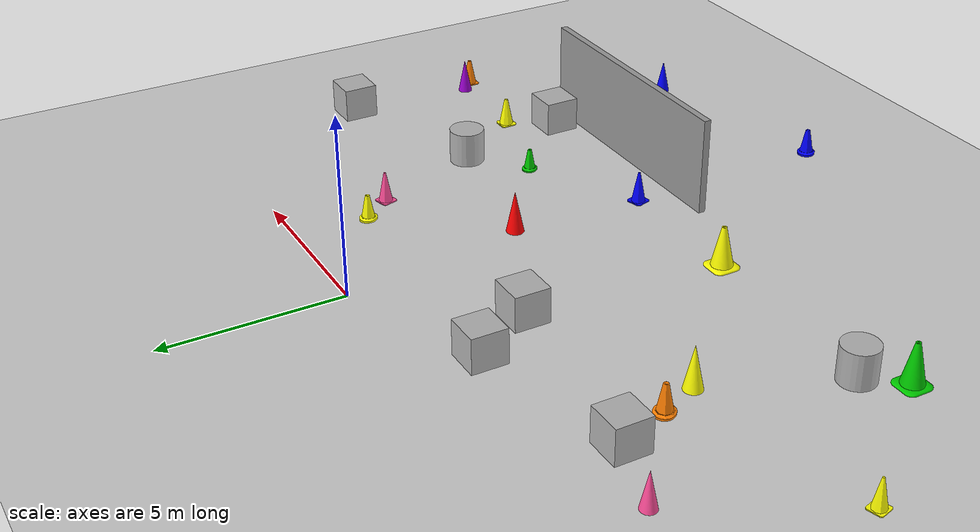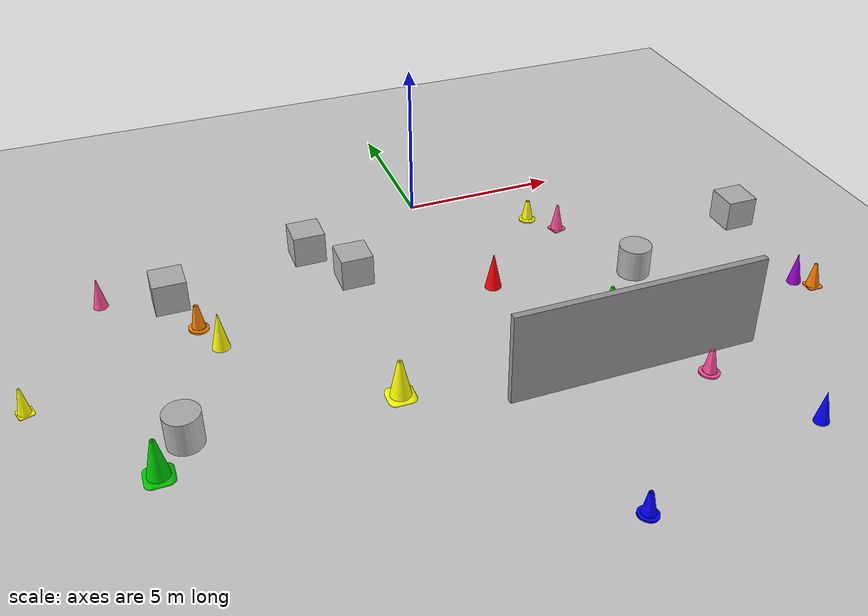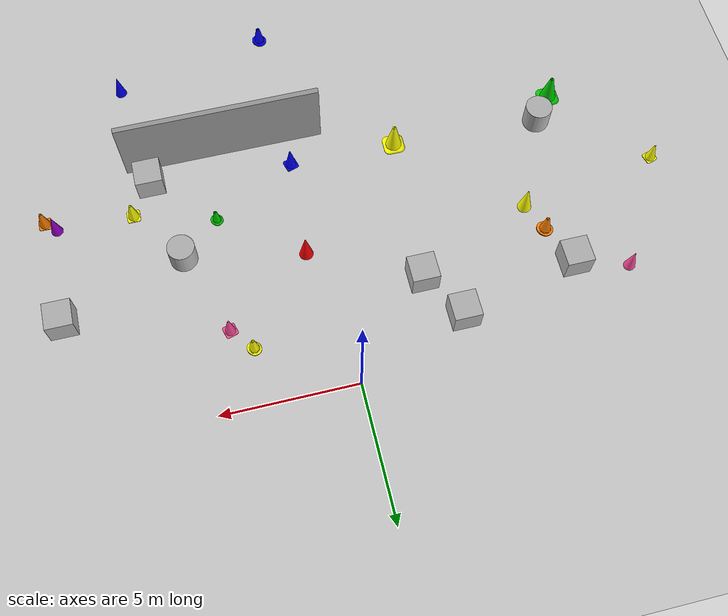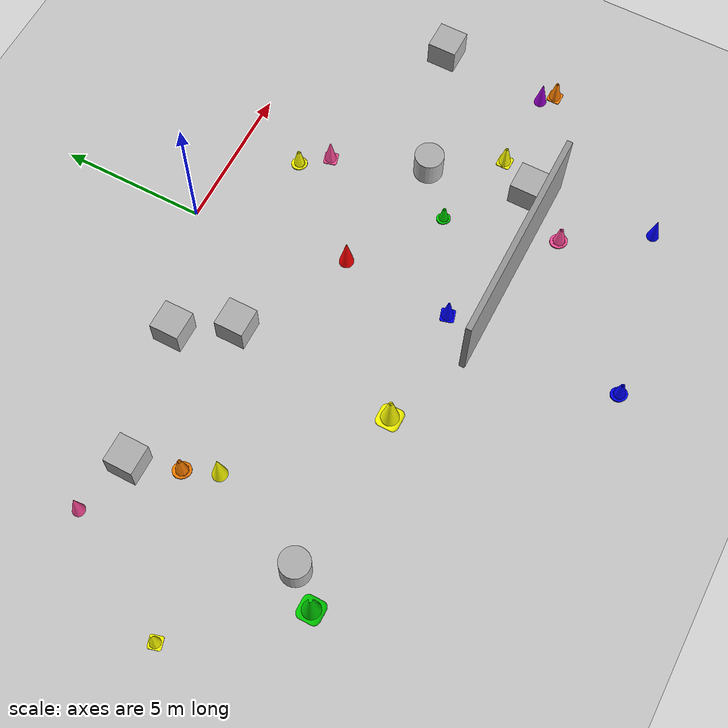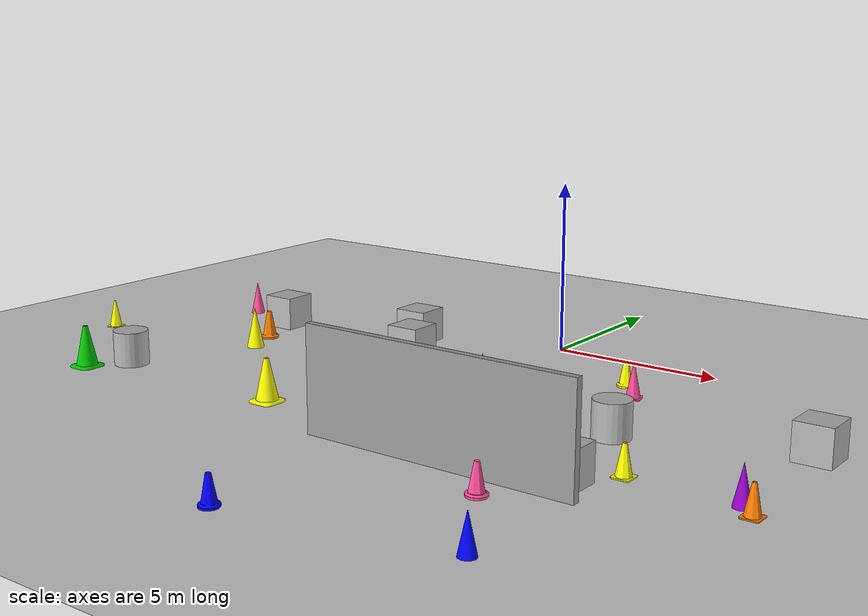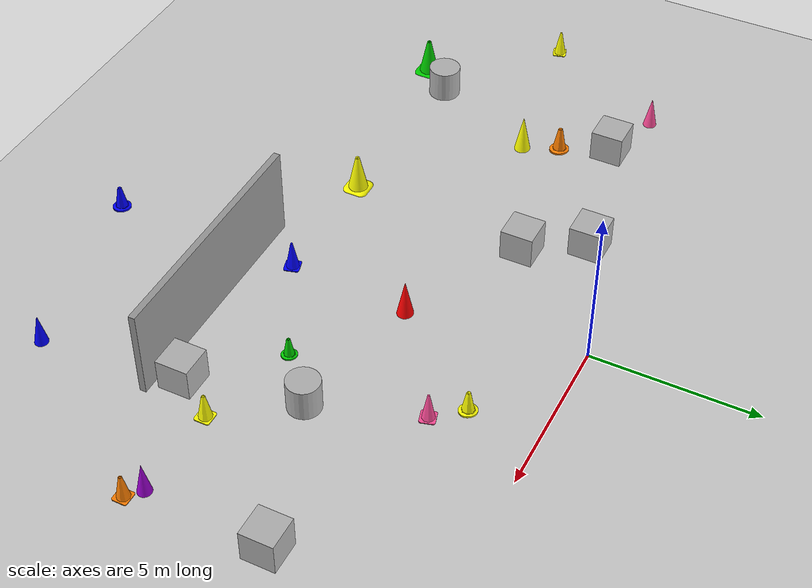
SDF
<sdf version="1.9">
 <world name="empty">
  <model name="ground_plane">
   <static>true</static>
   <link name="link">
    <collision name="collision">
     <geometry><plane><normal>0 0 1</normal><size>100 100</size></plane></geometry>
    </collision>
    <visual name="visual">
     <geometry><plane><normal>0 0 1</normal><size>100 100</size></plane></geometry>
     <material>
      <ambient>0.8 0.8 0.8 1</ambient>
      <diffuse>0.8 0.8 0.8 1</diffuse>
      <specular>0.8 0.8 0.8 1</specular>
     </material>
    </visual>
    <inertial>
     <mass>1</mass>
     <inertia><ixx>1</ixx><ixy>0</ixy><ixz>0</ixz><iyy>1</iyy><iyz>0</iyz><izz>1</izz></inertia>
    </inertial>
   </link>
  </model>
  <model name="grey_wall">
   <static>true</static>
   <link name="link">
    <pose>0 0 1.4 0 -0 0</pose>
    <collision name="collision"><geometry><box><size>7.5 0.2 2.8</size></box></geometry></collision>
    <visual name="visual">
     <cast_shadows>false</cast_shadows>
     <geometry><box><size>7.5 0.2 2.8</size></box></geometry>
     <material>
      <script>
       <uri>https://fuel.gazebosim.org/1.0/openrobotics/models/grey wall/3/files/materials/scripts</uri>
       <uri>https://fuel.gazebosim.org/1.0/openrobotics/models/grey wall/3/files/materials/textures</uri>
       <name>vrc/grey_wall</name>
      </script>
     </material>
    </visual>
    <inertial>
     <mass>1</mass>
     <inertia><ixx>1</ixx><ixy>0</ixy><ixz>0</ixz><iyy>1</iyy><iyz>0</iyz><izz>1</izz></inertia>
    </inertial>
   </link>
   <pose>2.89274 -10.265 0 0 -0 0</pose>
  </model>
  <model name="box_2">
   <pose>9.7016 -4.55837 0.5 0 -0 0</pose>
   <link name="box_link">
    <inertial>
     <inertia><ixx>0.16666</ixx><ixy>0</ixy><ixz>0</ixz><iyy>0.16666</iyy><iyz>0</iyz><izz>0.16666</izz></inertia>
     <mass>1</mass>
    </inertial>
    <collision name="box_collision"><geometry><box><size>1 1 1</size></box></geometry></collision>
    <visual name="box_visual">
     <geometry><box><size>1 1 1</size></box></geometry>
     <material>
      <ambient>0.3 0.3 0.3 1</ambient>
      <diffuse>0.7 0.7 0.7 1</diffuse>
      <specular>1 1 1 1</specular>
     </material>
    </visual>
   </link>
   <static>false</static>
  </model>
  <model name="box_3">
   <pose>5.83862 -9.47108 0.5 0 -0 0</pose>
   <link name="box_link">
    <inertial>
     <inertia><ixx>0.16666</ixx><ixy>0</ixy><ixz>0</ixz><iyy>0.16666</iyy><iyz>0</iyz><izz>0.16666</izz></inertia>
     <mass>1</mass>
    </inertial>
    <collision name="box_collision"><geometry><box><size>1 1 1</size></box></geometry></collision>
    <visual name="box_visual">
     <geometry><box><size>1 1 1</size></box></geometry>
     <material>
      <ambient>0.3 0.3 0.3 1</ambient>
      <diffuse>0.7 0.7 0.7 1</diffuse>
      <specular>1 1 1 1</specular>
     </material>
    </visual>
   </link>
   <static>false</static>
  </model>
  <model name="box_5">
   <pose>-3.05825 -3.35371 0.5 0 -0 0</pose>
   <link name="box_link">
    <inertial>
     <inertia><ixx>0.16666</ixx><ixy>0</ixy><ixz>0</ixz><iyy>0.16666</iyy><iyz>0</iyz><izz>0.16666</izz></inertia>
     <mass>1</mass>
    </inertial>
    <collision name="box_collision"><geometry><box><size>1 1 1</size></box></geometry></collision>
    <visual name="box_visual">
     <geometry><box><size>1 1 1</size></box></geometry>
     <material>
      <ambient>0.3 0.3 0.3 1</ambient>
      <diffuse>0.7 0.7 0.7 1</diffuse>
      <specular>1 1 1 1</specular>
     </material>
    </visual>
   </link>
   <static>false</static>
  </model>
  <model name="box_6">
   <pose>-4.09117 -1.61728 0.5 0 -0 0</pose>
   <link name="box_link">
    <inertial>
     <inertia><ixx>0.16666</ixx><ixy>0</ixy><ixz>0</ixz><iyy>0.16666</iyy><iyz>0</iyz><izz>0.16666</izz></inertia>
     <mass>1</mass>
    </inertial>
    <collision name="box_collision"><geometry><box><size>1 1 1</size></box></geometry></collision>
    <visual name="box_visual">
     <geometry><box><size>1 1 1</size></box></geometry>
     <material>
      <ambient>0.3 0.3 0.3 1</ambient>
      <diffuse>0.7 0.7 0.7 1</diffuse>
      <specular>1 1 1 1</specular>
     </material>
    </visual>
   </link>
   <static>false</static>
  </model>
  <model name="box_7">
   <pose>-8.54137 -2.70119 0.5 0 -0 0</pose>
   <link name="box_link">
    <inertial>
     <inertia><ixx>0.16666</ixx><ixy>0</ixy><ixz>0</ixz><iyy>0.16666</iyy><iyz>0</iyz><izz>0.16666</izz></inertia>
     <mass>1</mass>
    </inertial>
    <collision name="box_collision"><geometry><box><size>1 1 1</size></box></geometry></collision>
    <visual name="box_visual">
     <geometry><box><size>1 1 1</size></box></geometry>
     <material>
      <ambient>0.3 0.3 0.3 1</ambient>
      <diffuse>0.7 0.7 0.7 1</diffuse>
      <specular>1 1 1 1</specular>
     </material>
    </visual>
   </link>
   <static>false</static>
  </model>
  <model name="cylinder">
   <pose>5.13926 -6.10192 0.5 0 -0 0</pose>
   <link name="cylinder_link">
    <inertial>
     <inertia>
      <ixx>0.14580000000000001</ixx>
      <ixy>0</ixy>
      <ixz>0</ixz>
      <iyy>0.14580000000000001</iyy>
      <iyz>0</iyz>
      <izz>0.125</izz>
     </inertia>
     <mass>1</mass>
    </inertial>
    <collision name="cylinder_collision">
     <geometry><cylinder><radius>0.5</radius><length>1</length></cylinder></geometry>
    </collision>
    <visual name="cylinder_visual">
     <geometry><cylinder><radius>0.5</radius><length>1</length></cylinder></geometry>
     <material>
      <ambient>0.3 0.3 0.3 1</ambient>
      <diffuse>0.7 0.7 0.7 1</diffuse>
      <specular>1 1 1 1</specular>
     </material>
    </visual>
   </link>
   <static>false</static>
  </model>
  <model name="cylinder_2">
   <pose>-9.07969 -8.79365 0.5 0 -0 0</pose>
   <link name="cylinder_link">
    <inertial>
     <inertia>
      <ixx>0.14580000000000001</ixx>
      <ixy>0</ixy>
      <ixz>0</ixz>
      <iyy>0.14580000000000001</iyy>
      <iyz>0</iyz>
      <izz>0.125</izz>
     </inertia>
     <mass>1</mass>
    </inertial>
    <collision name="cylinder_collision">
     <geometry><cylinder><radius>0.5</radius><length>1</length></cylinder></geometry>
    </collision>
    <visual name="cylinder_visual">
     <geometry><cylinder><radius>0.5</radius><length>1</length></cylinder></geometry>
     <material>
      <ambient>0.3 0.3 0.3 1</ambient>
      <diffuse>0.7 0.7 0.7 1</diffuse>
      <specular>1 1 1 1</specular>
     </material>
    </visual>
   </link>
   <static>false</static>
  </model>
  <model name="safety_cone">
   <static>true</static>
   <link name="link">
    <visual name="visual">
     <geometry>
      <mesh>
       <uri>file:///home/abhay-07/.gz/models/cone_5/model://cone_5/meshes/safety_cone.stl</uri>
       <scale>0.3068 0.3068 0.3068</scale>
      </mesh>
     </geometry>
     <material><ambient>0.8 0.2 0.5 1</ambient><diffuse>1.0 0.3 0.6 1</diffuse></material>
    </visual>
    <collision name="collision">
     <geometry><cylinder><radius>0.0767</radius><length>0.3068</length></cylinder></geometry>
    </collision>
    <inertial>
     <mass>1</mass>
     <inertia><ixx>1</ixx><ixy>0</ixy><ixz>0</ixz><iyy>1</iyy><iyz>0</iyz><izz>1</izz></inertia>
    </inertial>
   </link>
   <pose>-2.72411 -1.42066 0 0 -0 0</pose>
  </model>
  <model name="another_cone_0">
   <static>true</static>
   <link name="link">
    <visual name="visual">
     <geometry>
      <mesh>
       <uri>file:///home/abhay-07/.gz/models/cone_3/model://cone_3/meshes/another_cone.stl</uri>
       <scale>0.3079 0.3079 0.3079</scale>
      </mesh>
     </geometry>
     <material><ambient>0.8 0.4 0.0 1</ambient><diffuse>1.0 0.5 0.0 1</diffuse></material>
    </visual>
    <collision name="collision">
     <geometry><cylinder><radius>0.0770</radius><length>0.3079</length></cylinder></geometry>
    </collision>
    <inertial>
     <mass>1</mass>
     <inertia><ixx>1</ixx><ixy>0</ixy><ixz>0</ixz><iyy>1</iyy><iyz>0</iyz><izz>1</izz></inertia>
    </inertial>
   </link>
   <pose>6.51559 -6.84749 0 0 -0 0</pose>
  </model>
  <model name="cone_red_1">
   <static>true</static>
   <link name="link">
    <visual name="visual">
     <geometry>
      <mesh>
       <uri>file:///home/abhay-07/.gz/models/cone_red/model://cone_red/meshes/cone.stl</uri>
       <scale>0.0151 0.0151 0.0151</scale>
      </mesh>
     </geometry>
     <material><ambient>0.0 0.0 0.8 1</ambient><diffuse>0.0 0.0 1.0 1</diffuse></material>
    </visual>
    <collision name="collision">
     <geometry><cylinder><radius>0.0500</radius><length>0.1000</length></cylinder></geometry>
    </collision>
    <inertial>
     <mass>1</mass>
     <inertia><ixx>1</ixx><ixy>0</ixy><ixz>0</ixz><iyy>1</iyy><iyz>0</iyz><izz>1</izz></inertia>
    </inertial>
   </link>
   <pose>6.3132 -13.7885 0 0 -0 0</pose>
  </model>
  <model name="cone_3_0">
   <static>true</static>
   <link name="link">
    <visual name="visual">
     <geometry>
      <mesh>
       <uri>file:///home/abhay-07/.gz/models/cone_2/model://cone_2/meshes/cone_3.stl</uri>
       <scale>0.3659 0.3659 0.3659</scale>
      </mesh>
     </geometry>
     <material><ambient>0.8 0.2 0.5 1</ambient><diffuse>1.0 0.3 0.6 1</diffuse></material>
    </visual>
    <collision name="collision">
     <geometry><cylinder><radius>0.0915</radius><length>0.3659</length></cylinder></geometry>
    </collision>
    <inertial>
     <mass>1</mass>
     <inertia><ixx>1</ixx><ixy>0</ixy><ixz>0</ixz><iyy>1</iyy><iyz>0</iyz><izz>1</izz></inertia>
    </inertial>
   </link>
   <pose>2.05775 -13.9966 0 0 -0 0</pose>
  </model>
  <model name="cone_3_1">
   <static>true</static>
   <link name="link">
    <visual name="visual">
     <geometry>
      <mesh>
       <uri>file:///home/abhay-07/.gz/models/cone_2/model://cone_2/meshes/cone_3.stl</uri>
       <scale>0.3454 0.3454 0.3454</scale>
      </mesh>
     </geometry>
     <material><ambient>0.0 0.0 0.8 1</ambient><diffuse>0.0 0.0 1.0 1</diffuse></material>
    </visual>
    <collision name="collision">
     <geometry><cylinder><radius>0.0863</radius><length>0.3454</length></cylinder></geometry>
    </collision>
    <inertial>
     <mass>1</mass>
     <inertia><ixx>1</ixx><ixy>0</ixy><ixz>0</ixz><iyy>1</iyy><iyz>0</iyz><izz>1</izz></inertia>
    </inertial>
   </link>
   <pose>-1.90886 -17.7406 0 0 -0 0</pose>
  </model>
  <model name="cone_3_2">
   <static>true</static>
   <link name="link">
    <visual name="visual">
     <geometry>
      <mesh>
       <uri>file:///home/abhay-07/.gz/models/cone_2/model://cone_2/meshes/cone_3.stl</uri>
       <scale>0.3339 0.3339 0.3339</scale>
      </mesh>
     </geometry>
     <material><ambient>0.8 0.8 0.0 1</ambient><diffuse>1.0 1.0 0.0 1</diffuse></material>
    </visual>
    <collision name="collision">
     <geometry><cylinder><radius>0.0835</radius><length>0.3339</length></cylinder></geometry>
    </collision>
    <inertial>
     <mass>1</mass>
     <inertia><ixx>1</ixx><ixy>0</ixy><ixz>0</ixz><iyy>1</iyy><iyz>0</iyz><izz>1</izz></inertia>
    </inertial>
   </link>
   <pose>0.921934 -4.7045 0 0 -0 0</pose>
  </model>
  <model name="cone_red_2">
   <static>true</static>
   <link name="link">
    <visual name="visual">
     <geometry>
      <mesh>
       <uri>file:///home/abhay-07/.gz/models/cone_red/model://cone_red/meshes/cone.stl</uri>
       <scale>0.0182 0.0182 0.0182</scale>
      </mesh>
     </geometry>
     <material><ambient>0.8 0.0 0.0 1</ambient><diffuse>1.0 0.0 0.0 1</diffuse></material>
    </visual>
    <collision name="collision">
     <geometry><cylinder><radius>0.0500</radius><length>0.1000</length></cylinder></geometry>
    </collision>
    <inertial>
     <mass>1</mass>
     <inertia><ixx>1</ixx><ixy>0</ixy><ixz>0</ixz><iyy>1</iyy><iyz>0</iyz><izz>1</izz></inertia>
    </inertial>
   </link>
   <pose>0.723312 -5.23185 0 0 -0 0</pose>
  </model>
  <model name="safety_cone_0">
   <static>true</static>
   <link name="link">
    <visual name="visual">
     <geometry>
      <mesh>
       <uri>file:///home/abhay-07/.gz/models/cone_5/model://cone_5/meshes/safety_cone.stl</uri>
       <scale>0.3133 0.3133 0.3133</scale>
      </mesh>
     </geometry>
     <material><ambient>0.0 0.0 0.8 1</ambient><diffuse>0.0 0.0 1.0 1</diffuse></material>
    </visual>
    <collision name="collision">
     <geometry><cylinder><radius>0.0783</radius><length>0.3133</length></cylinder></geometry>
    </collision>
    <inertial>
     <mass>1</mass>
     <inertia><ixx>1</ixx><ixy>0</ixy><ixz>0</ixz><iyy>1</iyy><iyz>0</iyz><izz>1</izz></inertia>
    </inertial>
   </link>
   <pose>-6.34687 -7.52608 0 0 -0 0</pose>
  </model>
  <model name="football_cone_1">
   <static>true</static>
   <link name="link">
    <visual name="visual">
     <geometry>
      <mesh>
       <uri>file:///home/abhay-07/.gz/models/cone_4/model://cone_4/meshes/football_cone.stl</uri>
       <scale>0.3949 0.3949 0.3949</scale>
      </mesh>
     </geometry>
     <material><ambient>0.8 0.8 0.0 1</ambient><diffuse>1.0 1.0 0.0 1</diffuse></material>
    </visual>
    <collision name="collision">
     <geometry><cylinder><radius>0.0987</radius><length>0.3949</length></cylinder></geometry>
    </collision>
    <inertial>
     <mass>1</mass>
     <inertia><ixx>1</ixx><ixy>0</ixy><ixz>0</ixz><iyy>1</iyy><iyz>0</iyz><izz>1</izz></inertia>
    </inertial>
   </link>
   <pose>-4.25359 -10.2323 0 0 -0 0</pose>
  </model>
  <model name="cone_3_3">
   <static>true</static>
   <link name="link">
    <visual name="visual">
     <geometry>
      <mesh>
       <uri>file:///home/abhay-07/.gz/models/cone_2/model://cone_2/meshes/cone_3.stl</uri>
       <scale>0.2923 0.2923 0.2923</scale>
      </mesh>
     </geometry>
     <material><ambient>0.0 0.6 0.0 1</ambient><diffuse>0.0 0.8 0.0 1</diffuse></material>
    </visual>
    <collision name="collision">
     <geometry><cylinder><radius>0.0731</radius><length>0.2923</length></cylinder></geometry>
    </collision>
    <inertial>
     <mass>1</mass>
     <inertia><ixx>1</ixx><ixy>0</ixy><ixz>0</ixz><iyy>1</iyy><iyz>0</iyz><izz>1</izz></inertia>
    </inertial>
   </link>
   <pose>1.58672 -9.67033 0 0 -0 0</pose>
  </model>
  <model name="cone_red_3">
   <static>true</static>
   <link name="link">
    <visual name="visual">
     <geometry>
      <mesh>
       <uri>file:///home/abhay-07/.gz/models/cone_red/model://cone_red/meshes/cone.stl</uri>
       <scale>0.0154 0.0154 0.0154</scale>
      </mesh>
     </geometry>
     <material><ambient>0.4 0.0 0.6 1</ambient><diffuse>0.6 0.0 0.8 1</diffuse></material>
    </visual>
    <collision name="collision">
     <geometry><cylinder><radius>0.0500</radius><length>0.1000</length></cylinder></geometry>
    </collision>
    <inertial>
     <mass>1</mass>
     <inertia><ixx>1</ixx><ixy>0</ixy><ixz>0</ixz><iyy>1</iyy><iyz>0</iyz><izz>1</izz></inertia>
    </inertial>
   </link>
   <pose>9.45029 -8.27336 0 0 -0 0</pose>
  </model>
  <model name="another_cone_2">
   <static>true</static>
   <link name="link">
    <visual name="visual">
     <geometry>
      <mesh>
       <uri>file:///home/abhay-07/.gz/models/cone_3/model://cone_3/meshes/another_cone.stl</uri>
       <scale>0.3213 0.3213 0.3213</scale>
      </mesh>
     </geometry>
     <material><ambient>0.8 0.8 0.0 1</ambient><diffuse>1.0 1.0 0.0 1</diffuse></material>
    </visual>
    <collision name="collision">
     <geometry><cylinder><radius>0.0803</radius><length>0.3213</length></cylinder></geometry>
    </collision>
    <inertial>
     <mass>1</mass>
     <inertia><ixx>1</ixx><ixy>0</ixy><ixz>0</ixz><iyy>1</iyy><iyz>0</iyz><izz>1</izz></inertia>
    </inertial>
   </link>
   <pose>3.14271 -6.33818 0 0 -0 0</pose>
  </model>
  <model name="football_cone_2">
   <static>true</static>
   <link name="link">
    <visual name="visual">
     <geometry>
      <mesh>
       <uri>file:///home/abhay-07/.gz/models/cone_4/model://cone_4/meshes/football_cone.stl</uri>
       <scale>0.3968 0.3968 0.3968</scale>
      </mesh>
     </geometry>
     <material><ambient>0.0 0.6 0.0 1</ambient><diffuse>0.0 0.8 0.0 1</diffuse></material>
    </visual>
    <collision name="collision">
     <geometry><cylinder><radius>0.0992</radius><length>0.3968</length></cylinder></geometry>
    </collision>
    <inertial>
     <mass>1</mass>
     <inertia><ixx>1</ixx><ixy>0</ixy><ixz>0</ixz><iyy>1</iyy><iyz>0</iyz><izz>1</izz></inertia>
    </inertial>
   </link>
   <pose>-10.6748 -10.9494 0 0 -0 0</pose>
  </model>
  <model name="safety_cone_1">
   <static>true</static>
   <link name="link">
    <visual name="visual">
     <geometry>
      <mesh>
       <uri>file:///home/abhay-07/.gz/models/cone_5/model://cone_5/meshes/safety_cone.stl</uri>
       <scale>0.2895 0.2895 0.2895</scale>
      </mesh>
     </geometry>
     <material><ambient>0.8 0.8 0.0 1</ambient><diffuse>1.0 1.0 0.0 1</diffuse></material>
    </visual>
    <collision name="collision">
     <geometry><cylinder><radius>0.0724</radius><length>0.2895</length></cylinder></geometry>
    </collision>
    <inertial>
     <mass>1</mass>
     <inertia><ixx>1</ixx><ixy>0</ixy><ixz>0</ixz><iyy>1</iyy><iyz>0</iyz><izz>1</izz></inertia>
    </inertial>
   </link>
   <pose>-19.1874 -4.77574 0 0 -0 0</pose>
  </model>
  <model name="cone_3_4">
   <static>true</static>
   <link name="link">
    <visual name="visual">
     <geometry>
      <mesh>
       <uri>file:///home/abhay-07/.gz/models/cone_2/model://cone_2/meshes/cone_3.stl</uri>
       <scale>0.3795 0.3795 0.3795</scale>
      </mesh>
     </geometry>
     <material><ambient>0.8 0.4 0.0 1</ambient><diffuse>1.0 0.5 0.0 1</diffuse></material>
    </visual>
    <collision name="collision">
     <geometry><cylinder><radius>0.0949</radius><length>0.3795</length></cylinder></geometry>
    </collision>
    <inertial>
     <mass>1</mass>
     <inertia><ixx>1</ixx><ixy>0</ixy><ixz>0</ixz><iyy>1</iyy><iyz>0</iyz><izz>1</izz></inertia>
    </inertial>
   </link>
   <pose>-10.7127 -7.16976 0 0 -0 0</pose>
  </model>
  <model name="cone_red_6">
   <static>true</static>
   <link name="link">
    <visual name="visual">
     <geometry>
      <mesh>
       <uri>file:///home/abhay-07/.gz/models/cone_red/model://cone_red/meshes/cone.stl</uri>
       <scale>0.0185 0.0185 0.0185</scale>
      </mesh>
     </geometry>
     <material><ambient>0.8 0.8 0.0 1</ambient><diffuse>1.0 1.0 0.0 1</diffuse></material>
    </visual>
    <collision name="collision">
     <geometry><cylinder><radius>0.0500</radius><length>0.1000</length></cylinder></geometry>
    </collision>
    <inertial>
     <mass>1</mass>
     <inertia><ixx>1</ixx><ixy>0</ixy><ixz>0</ixz><iyy>1</iyy><iyz>0</iyz><izz>1</izz></inertia>
    </inertial>
   </link>
   <pose>-7.58055 -5.24803 0 0 -0 0</pose>
  </model>
  <model name="cone_red_7">
   <static>true</static>
   <link name="link">
    <visual name="visual">
     <geometry>
      <mesh>
       <uri>file:///home/abhay-07/.gz/models/cone_red/model://cone_red/meshes/cone.stl</uri>
       <scale>0.0153 0.0153 0.0153</scale>
      </mesh>
     </geometry>
     <material><ambient>0.8 0.2 0.5 1</ambient><diffuse>1.0 0.3 0.6 1</diffuse></material>
    </visual>
    <collision name="collision">
     <geometry><cylinder><radius>0.0500</radius><length>0.1000</length></cylinder></geometry>
    </collision>
    <inertial>
     <mass>1</mass>
     <inertia><ixx>1</ixx><ixy>0</ixy><ixz>0</ixz><iyy>1</iyy><iyz>0</iyz><izz>1</izz></inertia>
    </inertial>
   </link>
   <pose>-10.5482 -2.06355 0 0 -0 0</pose>
  </model>
 </world>
</sdf>
